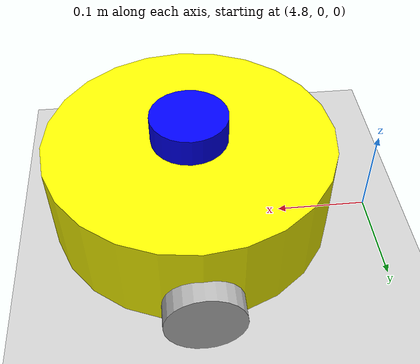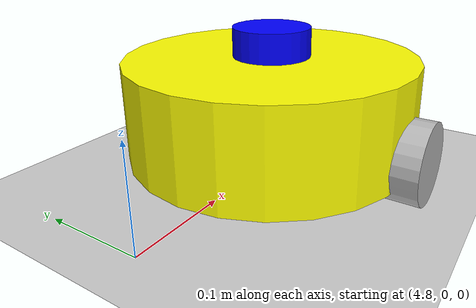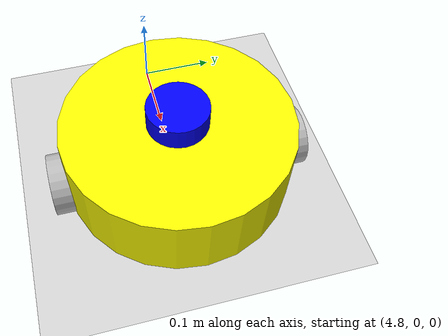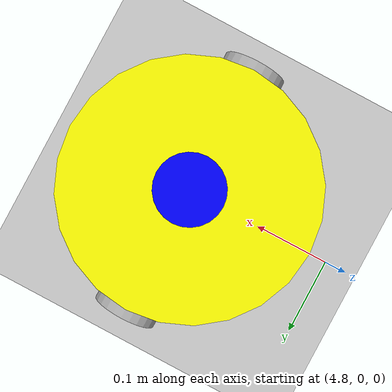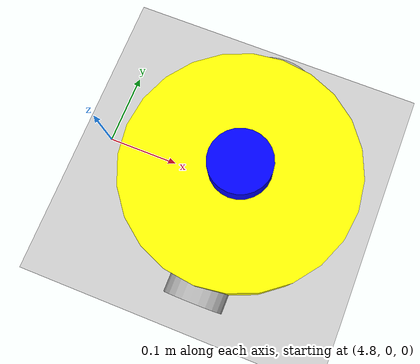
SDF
<?xml version="1.0" ?>
<sdf version="1.7">
  <world name="reactive_robot_world">

    <plugin
      filename="gz-sim-physics-system"
      name="gz::sim::systems::Physics">
    </plugin>
    <plugin
      filename="gz-sim-user-commands-system"
      name="gz::sim::systems::UserCommands">
    </plugin>
    <plugin
      filename="gz-sim-scene-broadcaster-system"
      name="gz::sim::systems::SceneBroadcaster">
    </plugin>
    <plugin
      filename="gz-sim-sensors-system"
      name="gz::sim::systems::Sensors">
      <render_engine>ogre2</render_engine>
    </plugin>

    <physics name="1ms" type="ignored">
      <max_step_size>0.001</max_step_size>
      <real_time_factor>1.0</real_time_factor>
    </physics>

    <light name="sun" type="directional">
      <cast_shadows>true</cast_shadows>
      <pose>0 0 10 0 0 0</pose>
      <diffuse>1 1 1 1</diffuse>
      <specular>0.2 0.2 0.2 1</specular>
      <direction>-0.5 0.5 -1</direction>
    </light>

    <model name="ground_plane">
      <static>true</static>
      <link name="link">
        <collision name="collision">
          <geometry>
            <plane>
              <normal>0 0 1</normal>
              <size>50 50</size>
            </plane>
          </geometry>
        </collision>
        <visual name="visual">
          <geometry>
            <plane>
              <normal>0 0 1</normal>
              <size>50 50</size>
            </plane>
          </geometry>
          <material>
            <ambient>0.8 0.8 0.8 1</ambient>
            <diffuse>0.8 0.8 0.8 1</diffuse>
            <specular>0.8 0.8 0.8 1</specular>
          </material>
        </visual>
      </link>
    </model>

    <include>
      <name>cinco_structure</name>
      <uri>model://cinco</uri>
      <pose>0 0 0 0 0 0</pose>
    </include>

    <include>
      <name>diff_robot</name>
      <uri>model://diff_robot</uri>
      <pose>5 0 0 0 0 0</pose>
    </include>

  </world>
</sdf>

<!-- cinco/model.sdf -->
<sdf version="1.7">
<model name="cinco">

  <static>true</static>

  <link name="link">

    <collision name="collision">
      <geometry>
        <mesh>
          <uri>model://cinco/meshes/cinco.stl</uri>
        </mesh>
      </geometry>
    </collision>

    <visual name="visual">
      <geometry>
        <mesh>
          <uri>model://cinco/meshes/cinco.stl</uri>
        </mesh>
      </geometry>
    </visual>

  </link>

</model>
</sdf>

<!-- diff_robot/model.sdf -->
<sdf version='1.11'>
  <model name='dx_bot'>

    <link name='footprint'>
      <pose>0 0 0 0 0 0</pose>
      <inertial>
        <mass>2</mass>
        <inertia>
          <ixx>0.0141</ixx>
          <iyy>0.0104</iyy>
          <izz>0.0154</izz>
        </inertia>
      </inertial>

      <collision name='base_collision'>
        <pose>0 0 0.069 0 0 0</pose>
        <geometry>
          <cylinder>
            <length>0.1</length>
            <radius>0.15</radius>
          </cylinder>
        </geometry>
      </collision>

      <visual name='base_visual'>
        <pose>0 0 0.069 0 0 0</pose>
        <geometry>
          <cylinder>
            <length>0.1</length>
            <radius>0.15</radius>
          </cylinder>
        </geometry>
        <material>
          <diffuse>1 1 0 1</diffuse>
        </material>
      </visual>
    </link>

    <link name='link_wheel_1'>
      <pose>0 0.15 0.04 0 1.5708 1.5708</pose> <inertial>
        <mass>0.1</mass>
      </inertial>
      <collision name='wheel1_collision'>
        <geometry>
          <cylinder>
            <radius>0.04</radius>
            <length>0.04</length>
          </cylinder>
        </geometry>
      </collision>
      <visual name='wheel1_visual'>
        <geometry>
          <cylinder>
            <radius>0.04</radius>
            <length>0.04</length>
          </cylinder>
        </geometry>
      </visual>
    </link>

    <joint name='joint_wheel_1' type='continuous'>
      <parent>footprint</parent>
      <child>link_wheel_1</child>
      <axis>
        <xyz>0 1 0</xyz> </axis>
    </joint>

    <link name='link_wheel_2'>
      <pose>0 -0.15 0.04 0 1.5708 1.5708</pose> <inertial>
        <mass>0.1</mass>
      </inertial>
      <collision name='wheel2_collision'>
        <geometry>
          <cylinder>
            <radius>0.04</radius>
            <length>0.04</length>
          </cylinder>
        </geometry>
      </collision>
      <visual name='wheel2_visual'>
        <geometry>
          <cylinder>
            <radius>0.04</radius>
            <length>0.04</length>
          </cylinder>
        </geometry>
      </visual>
    </link>

    <joint name='joint_wheel_2' type='continuous'>
      <parent>footprint</parent>
      <child>link_wheel_2</child>
      <axis>
        <xyz>0 1 0</xyz> </axis>
    </joint>

    <link name="link_laser">
      <pose>0 0 0.134 0 0 0</pose>
      <inertial>
        <mass>0.1</mass>
        <inertia>
          <ixx>1e-4</ixx>
          <iyy>1e-4</iyy>
          <izz>1e-4</izz>
        </inertia>
      </inertial>
      <collision name="laser_collision">
        <geometry>
          <cylinder>
            <radius>0.04</radius>
            <length>0.03</length>
          </cylinder>
        </geometry>
      </collision>
      <visual name="laser_visual">
        <geometry>
          <cylinder>
            <radius>0.04</radius>
            <length>0.03</length>
          </cylinder>
        </geometry>
        <material>
          <diffuse>0 0 1 1</diffuse>
        </material>
      </visual>

      <sensor name="hokuyo_lidar" type="gpu_lidar">
        <pose>0 0 0 0 0 0</pose>
        <update_rate>10</update_rate>
        <always_on>1</always_on>
        <visualize>true</visualize>
        <lidar>
          <scan>
            <horizontal>
              <samples>360</samples>
              <min_angle>-3.1416</min_angle>
              <max_angle>3.1416</max_angle>
            </horizontal>
          </scan>
          <range>
            <min>0.1</min>
            <max>10.0</max>
          </range>
        </lidar>
        <topic>/scan</topic>
      </sensor>
    </link>

    <joint name="joint_laser" type="fixed">
      <parent>footprint</parent>
      <child>link_laser</child>
    </joint>

    <plugin
      filename="gz-sim-diff-drive-system"
      name="gz::sim::systems::DiffDrive">
      <left_joint>joint_wheel_1</left_joint>
      <right_joint>joint_wheel_2</right_joint>
      <wheel_separation>0.3</wheel_separation>
      <wheel_radius>0.04</wheel_radius>
      <topic>cmd_vel</topic>
    </plugin>

  </model>
</sdf>
